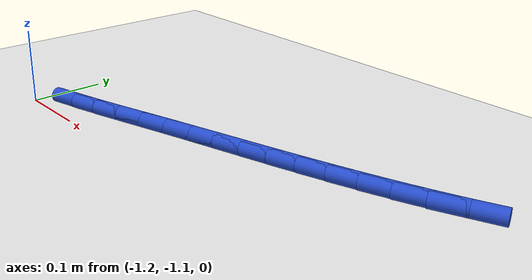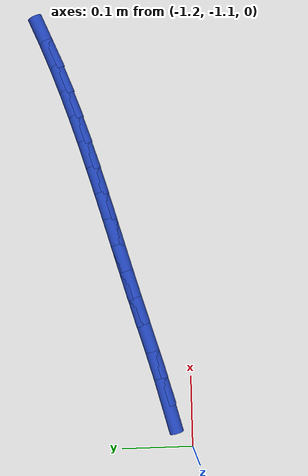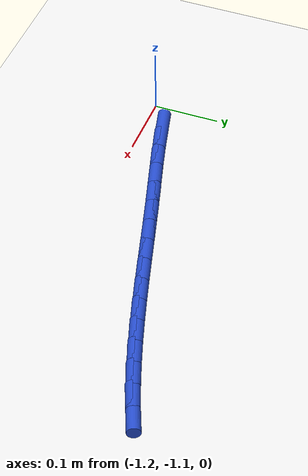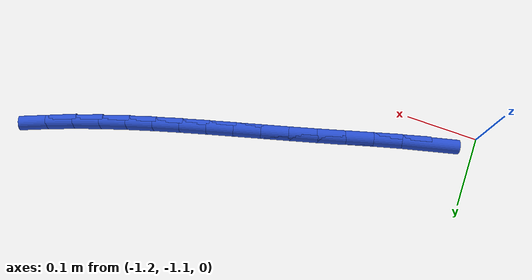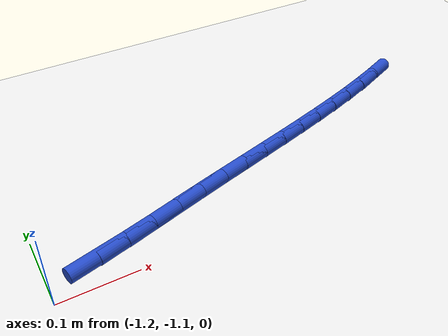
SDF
<sdf version="1.6">
 <world name="default">
  <model name="ground_plane">
   <static>1</static>
   <link name="link">
    <collision name="collision">
     <geometry><plane><normal>0 0 1</normal><size>100 100</size></plane></geometry>
     <surface><friction><ode><mu>100</mu><mu2>50</mu2></ode></friction></surface>
    </collision>
    <visual name="visual">
     <cast_shadows>0</cast_shadows>
     <geometry><plane><normal>0 0 1</normal><size>100 100</size></plane></geometry>
     <material>
      <script><uri>file://media/materials/scripts/gazebo.material</uri><name>Gazebo/WhiteGlow</name></script>
     </material>
    </visual>
   </link>
  </model>
  <model name="line">
   <link name="link_135">
    <pose>-1.1382843373779927 -1.0669818556554886 0.01 0 1.57 0.2538919012269848</pose>
    <collision name="collision">
     <geometry><cylinder><radius>0.01</radius><length>0.08</length></cylinder></geometry>
    </collision>
    <visual name="visual">
     <material>
      <script><name>Gazebo/Blue</name><uri>file://media/materials/scripts/gazebo.material</uri></script>
     </material>
     <geometry><cylinder><radius>0.01</radius><length>0.08</length></cylinder></geometry>
    </visual>
   </link>
   <link name="link_136">
    <pose>-1.100298966872782 -1.0571249666298308 0.01 0 1.57 0.27635310047939754</pose>
    <collision name="collision">
     <geometry><cylinder><radius>0.01</radius><length>0.08</length></cylinder></geometry>
    </collision>
    <visual name="visual">
     <material>
      <script><name>Gazebo/Blue</name><uri>file://media/materials/scripts/gazebo.material</uri></script>
     </material>
     <geometry><cylinder><radius>0.01</radius><length>0.08</length></cylinder></geometry>
    </visual>
   </link>
   <link name="link_137">
    <pose>-1.062326425051248 -1.0463555743431618 0.01 0 1.57 0.28736997491790855</pose>
    <collision name="collision">
     <geometry><cylinder><radius>0.01</radius><length>0.08</length></cylinder></geometry>
    </collision>
    <visual name="visual">
     <material>
      <script><name>Gazebo/Blue</name><uri>file://media/materials/scripts/gazebo.material</uri></script>
     </material>
     <geometry><cylinder><radius>0.01</radius><length>0.08</length></cylinder></geometry>
    </visual>
   </link>
   <link name="link_138">
    <pose>-1.0244679553889338 -1.0351664734674568 0.01 0 1.57 0.2871787783379912</pose>
    <collision name="collision">
     <geometry><cylinder><radius>0.01</radius><length>0.08</length></cylinder></geometry>
    </collision>
    <visual name="visual">
     <material>
      <script><name>Gazebo/Blue</name><uri>file://media/materials/scripts/gazebo.material</uri></script>
     </material>
     <geometry><cylinder><radius>0.01</radius><length>0.08</length></cylinder></geometry>
    </visual>
   </link>
   <link name="link_139">
    <pose>-0.9868245251299232 -1.0240487531974563 0.01 0 1.57 0.28033060979213975</pose>
    <collision name="collision">
     <geometry><cylinder><radius>0.01</radius><length>0.08</length></cylinder></geometry>
    </collision>
    <visual name="visual">
     <material>
      <script><name>Gazebo/Blue</name><uri>file://media/materials/scripts/gazebo.material</uri></script>
     </material>
     <geometry><cylinder><radius>0.01</radius><length>0.08</length></cylinder></geometry>
    </visual>
   </link>
   <link name="link_140">
    <pose>-0.9494645210804005 -1.0132923482467446 0.01 0 1.57 0.27583733616365835</pose>
    <collision name="collision">
     <geometry><cylinder><radius>0.01</radius><length>0.08</length></cylinder></geometry>
    </collision>
    <visual name="visual">
     <material>
      <script><name>Gazebo/Blue</name><uri>file://media/materials/scripts/gazebo.material</uri></script>
     </material>
     <geometry><cylinder><radius>0.01</radius><length>0.08</length></cylinder></geometry>
    </visual>
   </link>
   <link name="link_141">
    <pose>-0.9123935027045678 -1.0027992918090782 0.01 0 1.57 0.27483399132255487</pose>
    <collision name="collision">
     <geometry><cylinder><radius>0.01</radius><length>0.08</length></cylinder></geometry>
    </collision>
    <visual name="visual">
     <material>
      <script><name>Gazebo/Blue</name><uri>file://media/materials/scripts/gazebo.material</uri></script>
     </material>
     <geometry><cylinder><radius>0.01</radius><length>0.08</length></cylinder></geometry>
    </visual>
   </link>
   <link name="link_142">
    <pose>-0.8756098732380624 -0.9924274338954037 0.01 0 1.57 0.2774091949681765</pose>
    <collision name="collision">
     <geometry><cylinder><radius>0.01</radius><length>0.08</length></cylinder></geometry>
    </collision>
    <visual name="visual">
     <material>
      <script><name>Gazebo/Blue</name><uri>file://media/materials/scripts/gazebo.material</uri></script>
     </material>
     <geometry><cylinder><radius>0.01</radius><length>0.08</length></cylinder></geometry>
    </visual>
   </link>
   <link name="link_143">
    <pose>-0.8391120359165241 -0.9820346245166693 0.01 0 1.57 0.2836311924141654</pose>
    <collision name="collision">
     <geometry><cylinder><radius>0.01</radius><length>0.08</length></cylinder></geometry>
    </collision>
    <visual name="visual">
     <material>
      <script><name>Gazebo/Blue</name><uri>file://media/materials/scripts/gazebo.material</uri></script>
     </material>
     <geometry><cylinder><radius>0.01</radius><length>0.08</length></cylinder></geometry>
    </visual>
   </link>
   <link name="link_144">
    <pose>-0.8028983939755909 -0.9714787136838232 0.01 0 1.57 0.29354534843088353</pose>
    <collision name="collision">
     <geometry><cylinder><radius>0.01</radius><length>0.08</length></cylinder></geometry>
    </collision>
    <visual name="visual">
     <material>
      <script><name>Gazebo/Blue</name><uri>file://media/materials/scripts/gazebo.material</uri></script>
     </material>
     <geometry><cylinder><radius>0.01</radius><length>0.08</length></cylinder></geometry>
    </visual>
   </link>
   <link name="link_145">
    <pose>-0.7669673506509007 -0.9606175514078121 0.01 0 1.57 0.3071704149923046</pose>
    <collision name="collision">
     <geometry><cylinder><radius>0.01</radius><length>0.08</length></cylinder></geometry>
    </collision>
    <visual name="visual">
     <material>
      <script><name>Gazebo/Blue</name><uri>file://media/materials/scripts/gazebo.material</uri></script>
     </material>
     <geometry><cylinder><radius>0.01</radius><length>0.08</length></cylinder></geometry>
    </visual>
   </link>
   <link name="link_146">
    <pose>-0.7313173091780921 -0.9493089876995844 0.01 0 1.57 0.32449361112644076</pose>
    <collision name="collision">
     <geometry><cylinder><radius>0.01</radius><length>0.08</length></cylinder></geometry>
    </collision>
    <visual name="visual">
     <material>
      <script><name>Gazebo/Blue</name><uri>file://media/materials/scripts/gazebo.material</uri></script>
     </material>
     <geometry><cylinder><radius>0.01</radius><length>0.08</length></cylinder></geometry>
    </visual>
   </link>
   <link name="link_147">
    <pose>-0.6959466727928035 -0.9374108725700878 0.01 0 1.57 0.3454647228033851</pose>
    <collision name="collision">
     <geometry><cylinder><radius>0.01</radius><length>0.08</length></cylinder></geometry>
    </collision>
    <visual name="visual">
     <material>
      <script><name>Gazebo/Blue</name><uri>file://media/materials/scripts/gazebo.material</uri></script>
     </material>
     <geometry><cylinder><radius>0.01</radius><length>0.08</length></cylinder></geometry>
    </visual>
   </link>
   <link name="link_148">
    <pose>-0.6608538447306723 -0.9247810560302692 0.01 0 1.57 0.3699896386387592</pose>
    <collision name="collision">
     <geometry><cylinder><radius>0.01</radius><length>0.08</length></cylinder></geometry>
    </collision>
    <visual name="visual">
     <material>
      <script><name>Gazebo/Blue</name><uri>file://media/materials/scripts/gazebo.material</uri></script>
     </material>
     <geometry><cylinder><radius>0.01</radius><length>0.08</length></cylinder></geometry>
    </visual>
   </link>
   <link name="link_149">
    <pose>-0.6260372282273385 -0.9112773880910778 0.01 0 1.57 0.39792396917316925</pose>
    <collision name="collision">
     <geometry><cylinder><radius>0.01</radius><length>0.08</length></cylinder></geometry>
    </collision>
    <visual name="visual">
     <material>
      <script><name>Gazebo/Blue</name><uri>file://media/materials/scripts/gazebo.material</uri></script>
     </material>
     <geometry><cylinder><radius>0.01</radius><length>0.08</length></cylinder></geometry>
    </visual>
   </link>
  </model>
 </world>
</sdf>
